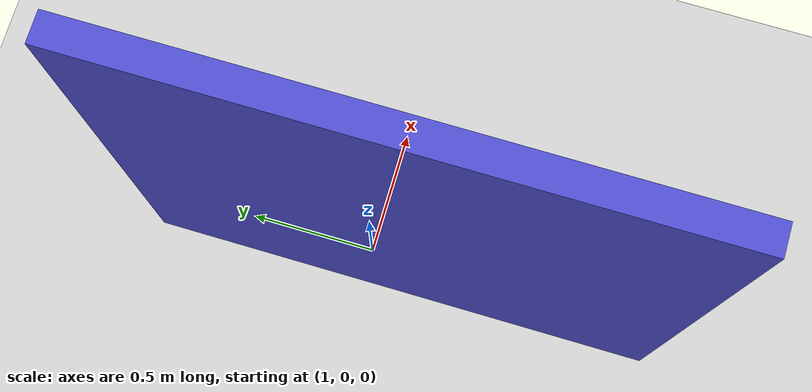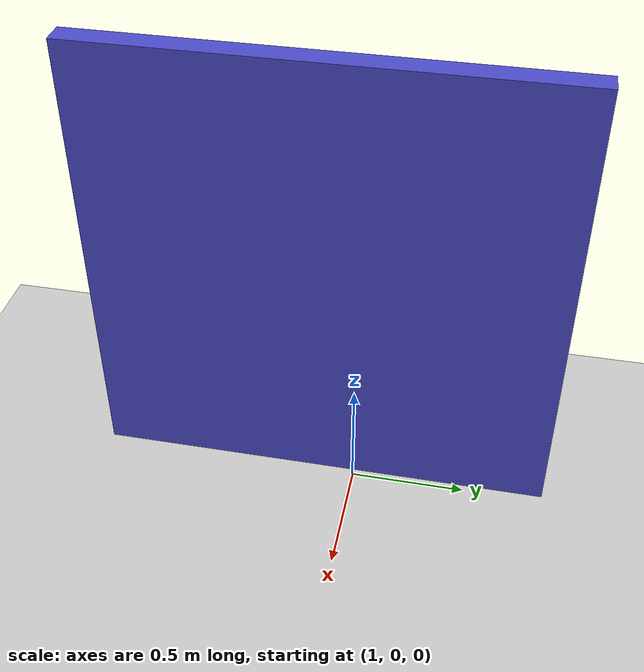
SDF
<?xml version="1.0" ?>
<sdf version="1.8">
  <world name="wall_world">

    <!-- Physics - use default -->
    <physics name="1ms" type="ignored">
      <max_step_size>0.001</max_step_size>
      <real_time_factor>1.0</real_time_factor>
    </physics>

    <!-- Core system plugins -->
    <plugin filename="gz-sim-physics-system" name="gz::sim::systems::Physics"/>
    <plugin filename="gz-sim-user-commands-system" name="gz::sim::systems::UserCommands"/>
    <plugin filename="gz-sim-scene-broadcaster-system" name="gz::sim::systems::SceneBroadcaster"/>
    <plugin filename="gz-sim-contact-system" name="gz::sim::systems::Contact"/>

    <!-- Force/Torque sensor system - required for FT sensor on robot wrist -->
    <plugin filename="gz-sim-forcetorque-system" name="gz::sim::systems::ForceTorque"/>

    <!-- Lighting -->
    <light type="directional" name="sun">
      <cast_shadows>false</cast_shadows>
      <pose>0 0 10 0 0 0</pose>
      <diffuse>0.8 0.8 0.8 1</diffuse>
      <specular>0.2 0.2 0.2 1</specular>
      <attenuation>
        <range>1000</range>
        <constant>0.9</constant>
        <linear>0.01</linear>
        <quadratic>0.001</quadratic>
      </attenuation>
      <direction>-0.5 0.1 -0.9</direction>
    </light>

    <!-- Ground Plane -->
    <model name="ground_plane">
      <static>true</static>
      <link name="link">
        <collision name="collision">
          <geometry>
            <plane>
              <normal>0 0 1</normal>
              <size>100 100</size>
            </plane>
          </geometry>
        </collision>
        <visual name="visual">
          <geometry>
            <plane>
              <normal>0 0 1</normal>
              <size>100 100</size>
            </plane>
          </geometry>
          <material>
            <ambient>0.8 0.8 0.8 1</ambient>
            <diffuse>0.8 0.8 0.8 1</diffuse>
            <specular>0.8 0.8 0.8 1</specular>
          </material>
        </visual>
      </link>
    </model>

    <!-- VERTICAL WALL for compliance control        -->
    <!-- Wall center: X=0.92, Y=-0.15, Z=1.0         -->
    <!-- Size: 0.1m thick (X), 2m wide (Y), 2m tall  -->
    <!-- Surface facing robot: X = 0.87m             -->
    <!-- Positioned just ahead of pre-contact pose   -->
    <model name="wall">
      <pose>0.92 -0.15 1.0 0 0 0</pose>
      <static>true</static>
      <link name="link">
        <collision name="collision">
          <geometry>
            <box>
              <size>0.1 2.0 2.0</size>
            </box>
          </geometry>
          <surface>
            <friction>
              <ode>
                <mu>1.0</mu>
                <mu2>1.0</mu2>
              </ode>
            </friction>
            <!-- Soft contact for force control - lower kp = softer wall -->
            <contact>
              <ode>
                <!-- Much softer contact: kp=1000 gives ~100N per 1cm penetration -->
                <kp>1000</kp>
                <kd>50</kd>
                <!-- Constraint force mixing - higher = more compliant -->
                <soft_cfm>0.01</soft_cfm>
                <soft_erp>0.1</soft_erp>
              </ode>
            </contact>
          </surface>
        </collision>
        <visual name="visual">
          <geometry>
            <box>
              <size>0.1 2.0 2.0</size>
            </box>
          </geometry>
          <material>
            <ambient>0.3 0.3 0.8 1</ambient>
            <diffuse>0.3 0.3 0.8 1</diffuse>
          </material>
        </visual>
      </link>
    </model>

  </world>
</sdf>
